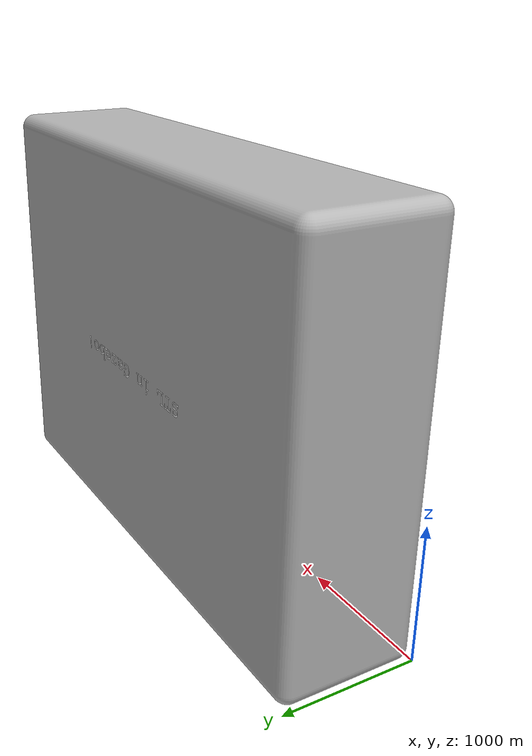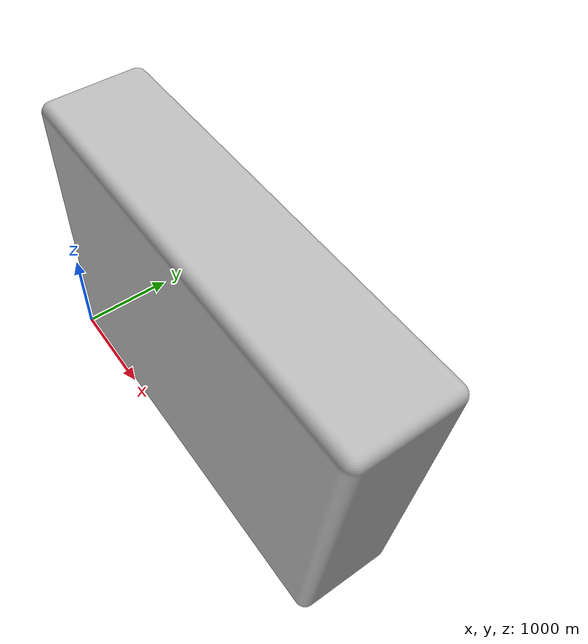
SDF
<?xml version="1.0"?>

<sdf version="1.6">
  <model name='STL_GZ'>
    <static>true</static>
    <link name="body">
      <pose>0 0 0 0 0 0</pose>

        <visual name="visual">
          <geometry>
            <mesh><uri>model://STL_GZ/meshes/STL_GZ.STL</uri></mesh>
          </geometry>
        </visual>

        <collision name="collision">
          <geometry>
            <mesh><uri>model://STL_GZ/meshes/STL_GZ.STL</uri></mesh>
          </geometry>
        </collision>

        <!-- TODO: Replace with accurate values of mass and inertia -->
        <inertial>
          <mass>1.0</mass>
          <inertia>
            <ixx>0.003366666666666667</ixx>
            <ixy>0</ixy>
            <ixz>0</ixz>
            <iyy>0.0008666666666666667</iyy>
            <iyz>0</iyz>
            <izz>0.0041666666666666675</izz>
          </inertia>
        </inertial>
    </link>
  </model>
</sdf>
